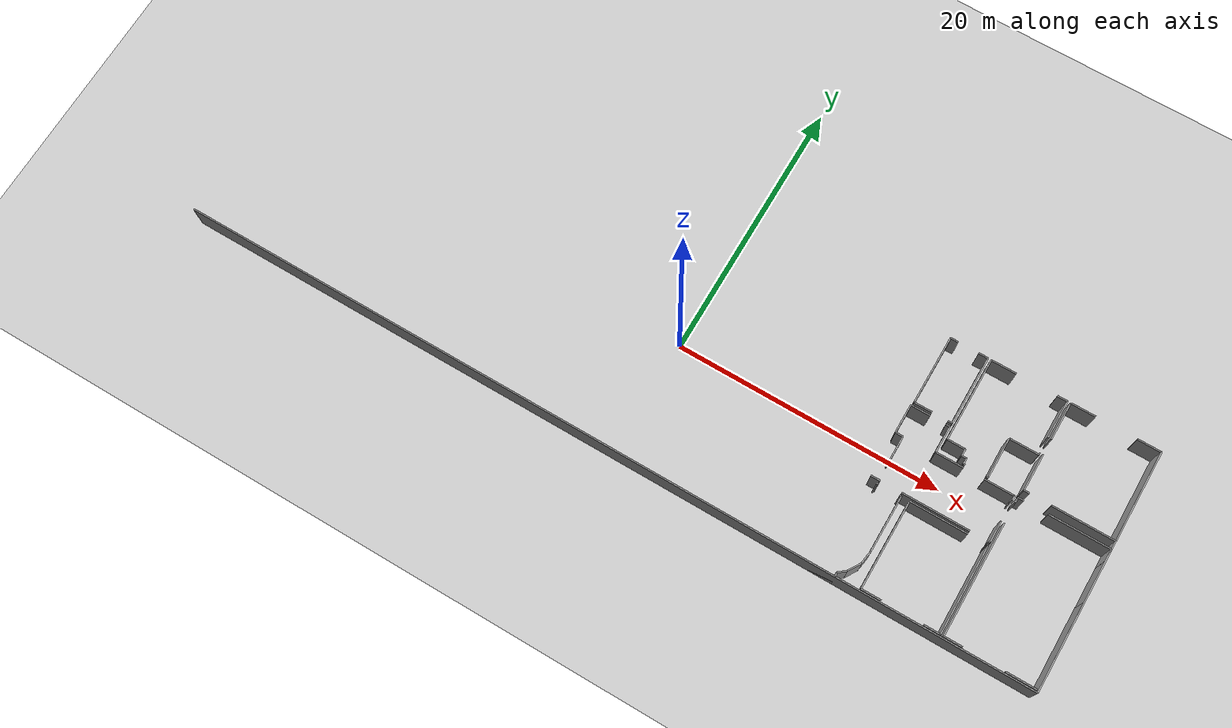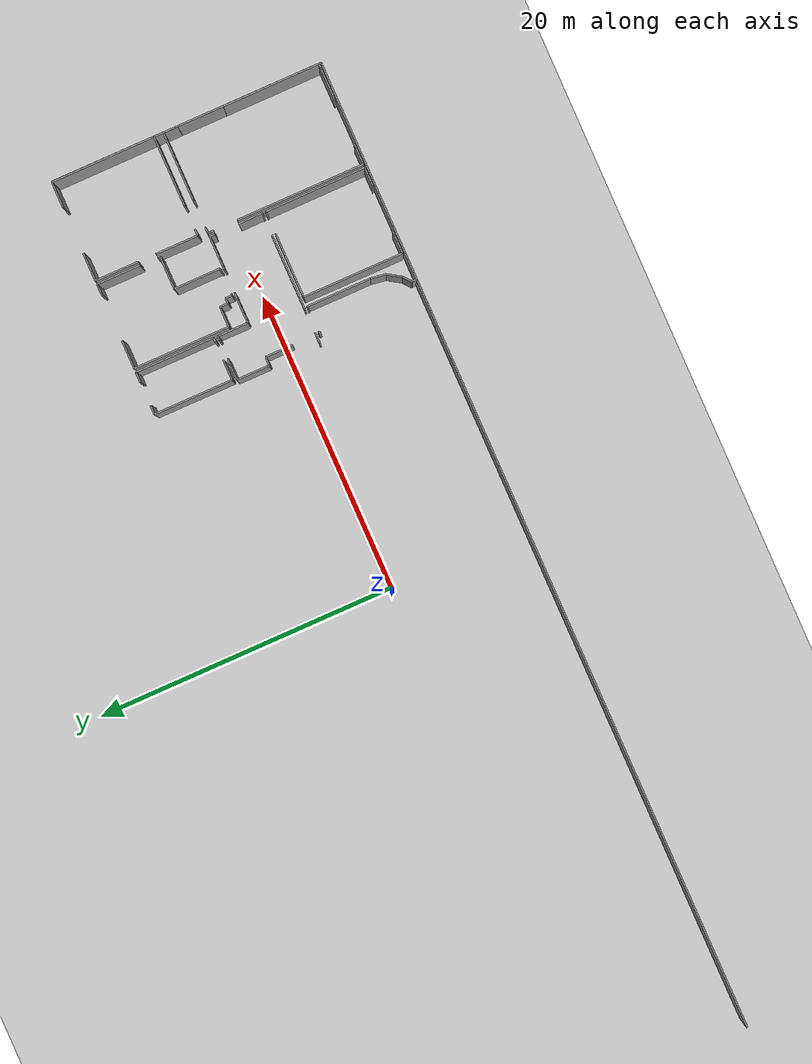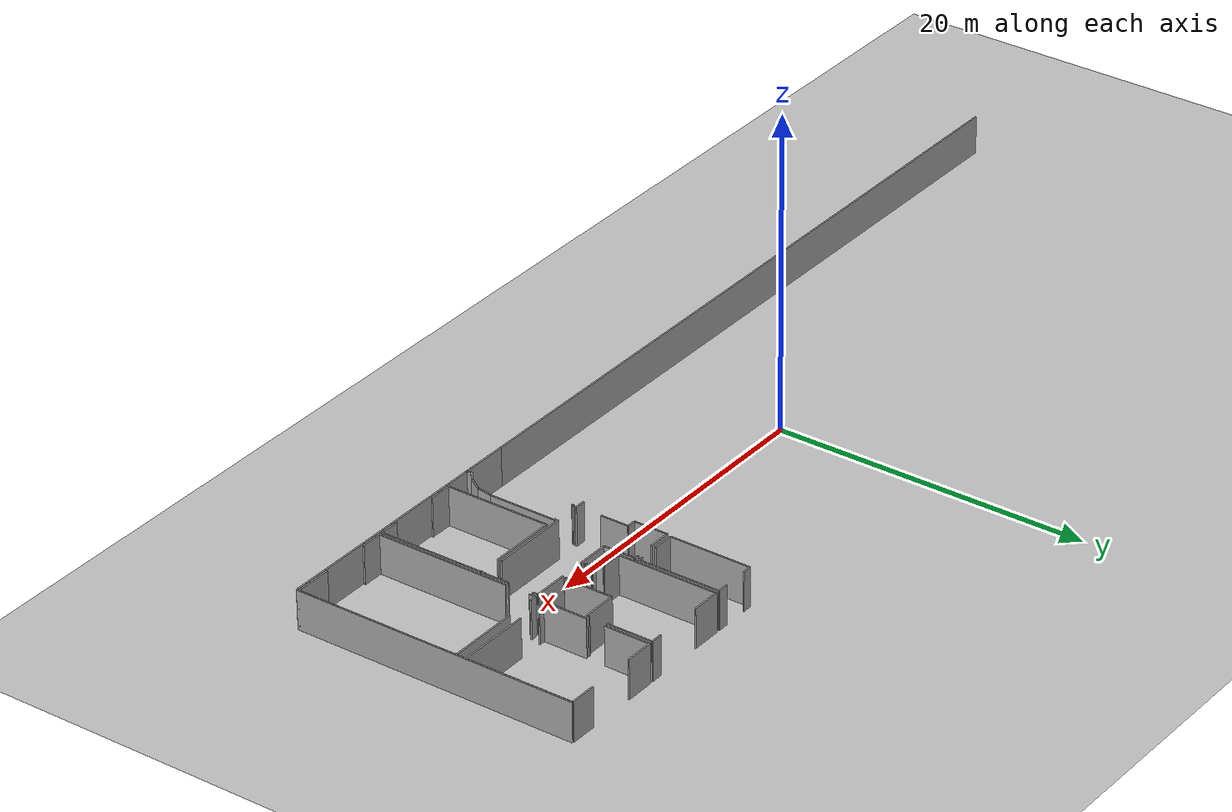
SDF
<sdf version="1.6">
 <world name="default">
  <model name="ground_plane">
   <static>1</static>
   <link name="link">
    <collision name="collision">
     <geometry><plane><normal>0 0 1</normal><size>100 100</size></plane></geometry>
     <surface><friction><ode><mu>100</mu><mu2>50</mu2></ode></friction></surface>
    </collision>
    <visual name="visual">
     <cast_shadows>0</cast_shadows>
     <geometry><plane><normal>0 0 1</normal><size>100 100</size></plane></geometry>
     <material>
      <script><uri>file://media/materials/scripts/gazebo.material</uri><name>Gazebo/Grey</name></script>
     </material>
    </visual>
   </link>
  </model>
  <model name="0510034840_A-40">
   <static>1</static>
   <link name="Wall_178">
    <collision name="Wall_178_Collision">
     <geometry><box><size>3.00222768036 0.1 2.5</size></box></geometry>
     <pose>1.50111384018 0 1.25 0 0 0</pose>
    </collision>
    <visual name="Wall_178_Visual">
     <pose>1.50111384018 0 1.25 0 0 0</pose>
     <geometry><box><size>3.00222768036 0.1 2.5</size></box></geometry>
     <material>
      <script><uri>file://media/materials/scripts/gazebo.material</uri><name>Gazebo/Grey</name></script>
      <ambient>1 1 1 1</ambient>
     </material>
    </visual>
    <pose>50.4421723374 -18.1569277051 0 0 0 3.14159265359</pose>
   </link>
   <link name="Wall_191">
    <collision name="Wall_191_Collision">
     <geometry><box><size>0.124013886509 0.1 2.5</size></box></geometry>
     <pose>0.0620069432544 0 1.25 0 0 0</pose>
    </collision>
    <visual name="Wall_191_Visual">
     <pose>0.0620069432544 0 1.25 0 0 0</pose>
     <geometry><box><size>0.124013886509 0.1 2.5</size></box></geometry>
     <material>
      <script><uri>file://media/materials/scripts/gazebo.material</uri><name>Gazebo/Grey</name></script>
      <ambient>1 1 1 1</ambient>
     </material>
    </visual>
    <pose>49.849774376 -11.4298407621 0 0 0 1.57079632679</pose>
   </link>
   <link name="Wall_192">
    <collision name="Wall_192_Collision">
     <geometry><box><size>0.0906304145009 0.1 2.5</size></box></geometry>
     <pose>0.0453152072504 0 1.25 0 0 0</pose>
    </collision>
    <visual name="Wall_192_Visual">
     <pose>0.0453152072504 0 1.25 0 0 0</pose>
     <geometry><box><size>0.0906304145009 0.1 2.5</size></box></geometry>
     <material>
      <script><uri>file://media/materials/scripts/gazebo.material</uri><name>Gazebo/Grey</name></script>
      <ambient>1 1 1 1</ambient>
     </material>
    </visual>
    <pose>49.849774376 -11.3058268756 0 0 0 0.0</pose>
   </link>
   <link name="Wall_193">
    <collision name="Wall_193_Collision">
     <geometry><box><size>0.130741354252 0.1 2.5</size></box></geometry>
     <pose>0.065370677126 0 1.25 0 0 0</pose>
    </collision>
    <visual name="Wall_193_Visual">
     <pose>0.065370677126 0 1.25 0 0 0</pose>
     <geometry><box><size>0.130741354252 0.1 2.5</size></box></geometry>
     <material>
      <script><uri>file://media/materials/scripts/gazebo.material</uri><name>Gazebo/Grey</name></script>
      <ambient>1 1 1 1</ambient>
     </material>
    </visual>
    <pose>51.5011773069 -11.3058268756 0 0 0 0.0</pose>
   </link>
   <link name="Wall_194">
    <collision name="Wall_194_Collision">
     <geometry><box><size>4.25531374752 0.1 2.5</size></box></geometry>
     <pose>2.12765687376 0 1.25 0 0 0</pose>
    </collision>
    <visual name="Wall_194_Visual">
     <pose>2.12765687376 0 1.25 0 0 0</pose>
     <geometry><box><size>4.25531374752 0.1 2.5</size></box></geometry>
     <material>
      <script><uri>file://media/materials/scripts/gazebo.material</uri><name>Gazebo/Grey</name></script>
      <ambient>1 1 1 1</ambient>
     </material>
    </visual>
    <pose>51.6319186611 -11.3058268756 0 0 0 -1.57079632679</pose>
   </link>
   <link name="Wall_195">
    <collision name="Wall_195_Collision">
     <geometry><box><size>0.999965145568 0.1 2.5</size></box></geometry>
     <pose>0.499982572784 0 1.25 0 0 0</pose>
    </collision>
    <visual name="Wall_195_Visual">
     <pose>0.499982572784 0 1.25 0 0 0</pose>
     <geometry><box><size>0.999965145568 0.1 2.5</size></box></geometry>
     <material>
      <script><uri>file://media/materials/scripts/gazebo.material</uri><name>Gazebo/Grey</name></script>
      <ambient>1 1 1 1</ambient>
     </material>
    </visual>
    <pose>51.6319186611 -15.5611406231 0 0 0 -1.72114873884</pose>
   </link>
   <link name="Wall_196">
    <collision name="Wall_196_Collision">
     <geometry><box><size>1.03566568426 0.1 2.5</size></box></geometry>
     <pose>0.517832842129 0 1.25 0 0 0</pose>
    </collision>
    <visual name="Wall_196_Visual">
     <pose>0.517832842129 0 1.25 0 0 0</pose>
     <geometry><box><size>1.03566568426 0.1 2.5</size></box></geometry>
     <material>
      <script><uri>file://media/materials/scripts/gazebo.material</uri><name>Gazebo/Grey</name></script>
      <ambient>1 1 1 1</ambient>
     </material>
    </visual>
    <pose>51.4821373038 -16.5498245146 0 0 0 -2.13833395158</pose>
   </link>
   <link name="Wall_197">
    <collision name="Wall_197_Collision">
     <geometry><box><size>0.68201579128 0.1 2.5</size></box></geometry>
     <pose>0.34100789564 0 1.25 0 0 0</pose>
    </collision>
    <visual name="Wall_197_Visual">
     <pose>0.34100789564 0 1.25 0 0 0</pose>
     <geometry><box><size>0.68201579128 0.1 2.5</size></box></geometry>
     <material>
      <script><uri>file://media/materials/scripts/gazebo.material</uri><name>Gazebo/Grey</name></script>
      <ambient>1 1 1 1</ambient>
     </material>
    </visual>
    <pose>50.9254076147 -17.4231259877 0 0 0 -2.45571909764</pose>
   </link>
   <link name="Wall_198">
    <collision name="Wall_198_Collision">
     <geometry><box><size>0.305117921789 0.1 2.5</size></box></geometry>
     <pose>0.152558960895 0 1.25 0 0 0</pose>
    </collision>
    <visual name="Wall_198_Visual">
     <pose>0.152558960895 0 1.25 0 0 0</pose>
     <geometry><box><size>0.305117921789 0.1 2.5</size></box></geometry>
     <material>
      <script><uri>file://media/materials/scripts/gazebo.material</uri><name>Gazebo/Grey</name></script>
      <ambient>1 1 1 1</ambient>
     </material>
    </visual>
    <pose>50.3976187303 -17.8550801901 0 0 0 -1.42425142662</pose>
   </link>
   <link name="Wall_199">
    <collision name="Wall_199_Collision">
     <geometry><box><size>0.1010389495 0.1 2.5</size></box></geometry>
     <pose>0.0505194747498 0 1.25 0 0 0</pose>
    </collision>
    <visual name="Wall_199_Visual">
     <pose>0.0505194747498 0 1.25 0 0 0</pose>
     <geometry><box><size>0.1010389495 0.1 2.5</size></box></geometry>
     <material>
      <script><uri>file://media/materials/scripts/gazebo.material</uri><name>Gazebo/Grey</name></script>
      <ambient>1 1 1 1</ambient>
     </material>
    </visual>
    <pose>58.0222514169 -11.0989255092 0 0 0 3.14159265359</pose>
   </link>
   <link name="Wall_200">
    <collision name="Wall_200_Collision">
     <geometry><box><size>5.01589840254 0.1 2.5</size></box></geometry>
     <pose>2.50794920127 0 1.25 0 0 0</pose>
    </collision>
    <visual name="Wall_200_Visual">
     <pose>2.50794920127 0 1.25 0 0 0</pose>
     <geometry><box><size>5.01589840254 0.1 2.5</size></box></geometry>
     <material>
      <script><uri>file://media/materials/scripts/gazebo.material</uri><name>Gazebo/Grey</name></script>
      <ambient>1 1 1 1</ambient>
     </material>
    </visual>
    <pose>56.5469050475 -11.0989255092 0 0 0 3.14159265359</pose>
   </link>
   <link name="Wall_201">
    <collision name="Wall_201_Collision">
     <geometry><box><size>0.701052912168 0.1 2.5</size></box></geometry>
     <pose>0.350526456084 0 1.25 0 0 0</pose>
    </collision>
    <visual name="Wall_201_Visual">
     <pose>0.350526456084 0 1.25 0 0 0</pose>
     <geometry><box><size>0.701052912168 0.1 2.5</size></box></geometry>
     <material>
      <script><uri>file://media/materials/scripts/gazebo.material</uri><name>Gazebo/Grey</name></script>
      <ambient>1 1 1 1</ambient>
     </material>
    </visual>
    <pose>49.9452282579 -11.0989255092 0 0 0 3.14159265359</pose>
   </link>
   <link name="Wall_204">
    <collision name="Wall_204_Collision">
     <geometry><box><size>1.82377842514 0.1 2.5</size></box></geometry>
     <pose>0.911889212569 0 1.25 0 0 0</pose>
    </collision>
    <visual name="Wall_204_Visual">
     <pose>0.911889212569 0 1.25 0 0 0</pose>
     <geometry><box><size>1.82377842514 0.1 2.5</size></box></geometry>
     <material>
      <script><uri>file://media/materials/scripts/gazebo.material</uri><name>Gazebo/Grey</name></script>
      <ambient>1 1 1 1</ambient>
     </material>
    </visual>
    <pose>49.8181679709 -9.52114392338 0 0 0 1.57079632679</pose>
   </link>
   <link name="Wall_205">
    <collision name="Wall_205_Collision">
     <geometry><box><size>0.568026757551 0.1 2.5</size></box></geometry>
     <pose>0.284013378775 0 1.25 0 0 0</pose>
    </collision>
    <visual name="Wall_205_Visual">
     <pose>0.284013378775 0 1.25 0 0 0</pose>
     <geometry><box><size>0.568026757551 0.1 2.5</size></box></geometry>
     <material>
      <script><uri>file://media/materials/scripts/gazebo.material</uri><name>Gazebo/Grey</name></script>
      <ambient>1 1 1 1</ambient>
     </material>
    </visual>
    <pose>49.8181679709 -7.69736549825 0 0 0 3.14159265359</pose>
   </link>
   <link name="Wall_206">
    <collision name="Wall_206_Collision">
     <geometry><box><size>2.18350754936 0.1 2.5</size></box></geometry>
     <pose>1.09175377468 0 1.25 0 0 0</pose>
    </collision>
    <visual name="Wall_206_Visual">
     <pose>1.09175377468 0 1.25 0 0 0</pose>
     <geometry><box><size>2.18350754936 0.1 2.5</size></box></geometry>
     <material>
      <script><uri>file://media/materials/scripts/gazebo.material</uri><name>Gazebo/Grey</name></script>
      <ambient>1 1 1 1</ambient>
     </material>
    </visual>
    <pose>49.2501412134 -7.69736549825 0 0 0 1.57079632679</pose>
   </link>
   <link name="Wall_207">
    <collision name="Wall_207_Collision">
     <geometry><box><size>1.43256982921 0.1 2.5</size></box></geometry>
     <pose>0.716284914606 0 1.25 0 0 0</pose>
    </collision>
    <visual name="Wall_207_Visual">
     <pose>0.716284914606 0 1.25 0 0 0</pose>
     <geometry><box><size>1.43256982921 0.1 2.5</size></box></geometry>
     <material>
      <script><uri>file://media/materials/scripts/gazebo.material</uri><name>Gazebo/Grey</name></script>
      <ambient>1 1 1 1</ambient>
     </material>
    </visual>
    <pose>49.2501412134 -5.51385794888 0 0 0 0.0</pose>
   </link>
   <link name="Wall_208">
    <collision name="Wall_208_Collision">
     <geometry><box><size>0.297531780938 0.1 2.5</size></box></geometry>
     <pose>0.148765890469 0 1.25 0 0 0</pose>
    </collision>
    <visual name="Wall_208_Visual">
     <pose>0.148765890469 0 1.25 0 0 0</pose>
     <geometry><box><size>0.297531780938 0.1 2.5</size></box></geometry>
     <material>
      <script><uri>file://media/materials/scripts/gazebo.material</uri><name>Gazebo/Grey</name></script>
      <ambient>1 1 1 1</ambient>
     </material>
    </visual>
    <pose>51.885277635 -5.51385794888 0 0 0 0.0</pose>
   </link>
   <link name="Wall_209">
    <collision name="Wall_209_Collision">
     <geometry><box><size>2.03296459194 0.1 2.5</size></box></geometry>
     <pose>1.01648229597 0 1.25 0 0 0</pose>
    </collision>
    <visual name="Wall_209_Visual">
     <pose>1.01648229597 0 1.25 0 0 0</pose>
     <geometry><box><size>2.03296459194 0.1 2.5</size></box></geometry>
     <material>
      <script><uri>file://media/materials/scripts/gazebo.material</uri><name>Gazebo/Grey</name></script>
      <ambient>1 1 1 1</ambient>
     </material>
    </visual>
    <pose>52.1828094159 -5.51385794888 0 0 0 -1.57079632679</pose>
   </link>
   <link name="Wall_210">
    <collision name="Wall_210_Collision">
     <geometry><box><size>2.05390859529 0.1 2.5</size></box></geometry>
     <pose>1.02695429765 0 1.25 0 0 0</pose>
    </collision>
    <visual name="Wall_210_Visual">
     <pose>1.02695429765 0 1.25 0 0 0</pose>
     <geometry><box><size>2.05390859529 0.1 2.5</size></box></geometry>
     <material>
      <script><uri>file://media/materials/scripts/gazebo.material</uri><name>Gazebo/Grey</name></script>
      <ambient>1 1 1 1</ambient>
     </material>
    </visual>
    <pose>52.1828094159 -7.54682254082 0 0 0 0.0</pose>
   </link>
   <link name="Wall_211">
    <collision name="Wall_211_Collision">
     <geometry><box><size>2.20330915253 0.1 2.5</size></box></geometry>
     <pose>1.10165457626 0 1.25 0 0 0</pose>
    </collision>
    <visual name="Wall_211_Visual">
     <pose>1.10165457626 0 1.25 0 0 0</pose>
     <geometry><box><size>2.20330915253 0.1 2.5</size></box></geometry>
     <material>
      <script><uri>file://media/materials/scripts/gazebo.material</uri><name>Gazebo/Grey</name></script>
      <ambient>1 1 1 1</ambient>
     </material>
    </visual>
    <pose>55.795840394 -7.54682254082 0 0 0 0.0</pose>
   </link>
   <link name="Wall_212">
    <collision name="Wall_212_Collision">
     <geometry><box><size>0.342212321421 0.1 2.5</size></box></geometry>
     <pose>0.17110616071 0 1.25 0 0 0</pose>
    </collision>
    <visual name="Wall_212_Visual">
     <pose>0.17110616071 0 1.25 0 0 0</pose>
     <geometry><box><size>0.342212321421 0.1 2.5</size></box></geometry>
     <material>
      <script><uri>file://media/materials/scripts/gazebo.material</uri><name>Gazebo/Grey</name></script>
      <ambient>1 1 1 1</ambient>
     </material>
    </visual>
    <pose>57.9991495465 -7.54682254082 0 0 0 -1.57079632679</pose>
   </link>
   <link name="Wall_213">
    <collision name="Wall_213_Collision">
     <geometry><box><size>1.60764998561 0.1 2.5</size></box></geometry>
     <pose>0.803824992804 0 1.25 0 0 0</pose>
    </collision>
    <visual name="Wall_213_Visual">
     <pose>0.803824992804 0 1.25 0 0 0</pose>
     <geometry><box><size>1.60764998561 0.1 2.5</size></box></geometry>
     <material>
      <script><uri>file://media/materials/scripts/gazebo.material</uri><name>Gazebo/Grey</name></script>
      <ambient>1 1 1 1</ambient>
     </material>
    </visual>
    <pose>57.9991495465 -9.49144151863 0 0 0 -1.55642586947</pose>
   </link>
   <link name="Wall_214">
    <collision name="Wall_214_Collision">
     <geometry><box><size>0.319364317765 0.1 2.5</size></box></geometry>
     <pose>0.159682158882 0 1.25 0 0 0</pose>
    </collision>
    <visual name="Wall_214_Visual">
     <pose>0.159682158882 0 1.25 0 0 0</pose>
     <geometry><box><size>0.319364317765 0.1 2.5</size></box></geometry>
     <material>
      <script><uri>file://media/materials/scripts/gazebo.material</uri><name>Gazebo/Grey</name></script>
      <ambient>1 1 1 1</ambient>
     </material>
    </visual>
    <pose>52.197914485 -5.24374377233 0 0 0 3.14159265359</pose>
   </link>
   <link name="Wall_215">
    <collision name="Wall_215_Collision">
     <geometry><box><size>1.35196714965 0.1 2.5</size></box></geometry>
     <pose>0.675983574824 0 1.25 0 0 0</pose>
    </collision>
    <visual name="Wall_215_Visual">
     <pose>0.675983574824 0 1.25 0 0 0</pose>
     <geometry><box><size>1.35196714965 0.1 2.5</size></box></geometry>
     <material>
      <script><uri>file://media/materials/scripts/gazebo.material</uri><name>Gazebo/Grey</name></script>
      <ambient>1 1 1 1</ambient>
     </material>
    </visual>
    <pose>50.7046705127 -5.24374377233 0 0 0 3.14159265359</pose>
   </link>
   <link name="Wall_216">
    <collision name="Wall_216_Collision">
     <geometry><box><size>5.23333523733 0.1 2.5</size></box></geometry>
     <pose>2.61666761867 0 1.25 0 0 0</pose>
    </collision>
    <visual name="Wall_216_Visual">
     <pose>2.61666761867 0 1.25 0 0 0</pose>
     <geometry><box><size>5.23333523733 0.1 2.5</size></box></geometry>
     <material>
      <script><uri>file://media/materials/scripts/gazebo.material</uri><name>Gazebo/Grey</name></script>
      <ambient>1 1 1 1</ambient>
     </material>
    </visual>
    <pose>49.3527033631 -5.24374377233 0 0 0 1.57079632679</pose>
   </link>
   <link name="Wall_217">
    <collision name="Wall_217_Collision">
     <geometry><box><size>0.592778761511 0.1 2.5</size></box></geometry>
     <pose>0.296389380756 0 1.25 0 0 0</pose>
    </collision>
    <visual name="Wall_217_Visual">
     <pose>0.296389380756 0 1.25 0 0 0</pose>
     <geometry><box><size>0.592778761511 0.1 2.5</size></box></geometry>
     <material>
      <script><uri>file://media/materials/scripts/gazebo.material</uri><name>Gazebo/Grey</name></script>
      <ambient>1 1 1 1</ambient>
     </material>
    </visual>
    <pose>49.3527033631 -0.0104085349987 0 0 0 0.0</pose>
   </link>
   <link name="Wall_218">
    <collision name="Wall_218_Collision">
     <geometry><box><size>0.713365447472 0.1 2.5</size></box></geometry>
     <pose>0.356682723736 0 1.25 0 0 0</pose>
    </collision>
    <visual name="Wall_218_Visual">
     <pose>0.356682723736 0 1.25 0 0 0</pose>
     <geometry><box><size>0.713365447472 0.1 2.5</size></box></geometry>
     <material>
      <script><uri>file://media/materials/scripts/gazebo.material</uri><name>Gazebo/Grey</name></script>
      <ambient>1 1 1 1</ambient>
     </material>
    </visual>
    <pose>51.4765522362 -0.0104085349987 0 0 0 0.0</pose>
   </link>
   <link name="Wall_219">
    <collision name="Wall_219_Collision">
     <geometry><box><size>5.23334134709 0.1 2.5</size></box></geometry>
     <pose>2.61667067354 0 1.25 0 0 0</pose>
    </collision>
    <visual name="Wall_219_Visual">
     <pose>2.61667067354 0 1.25 0 0 0</pose>
     <geometry><box><size>5.23334134709 0.1 2.5</size></box></geometry>
     <material>
      <script><uri>file://media/materials/scripts/gazebo.material</uri><name>Gazebo/Grey</name></script>
      <ambient>1 1 1 1</ambient>
     </material>
    </visual>
    <pose>52.1899176837 -0.0104085349987 0 0 0 -1.56926827734</pose>
   </link>
   <link name="Wall_220">
    <collision name="Wall_220_Collision">
     <geometry><box><size>0.115890151876 0.1 2.5</size></box></geometry>
     <pose>0.0579450759379 0 1.25 0 0 0</pose>
    </collision>
    <visual name="Wall_220_Visual">
     <pose>0.0579450759379 0 1.25 0 0 0</pose>
     <geometry><box><size>0.115890151876 0.1 2.5</size></box></geometry>
     <material>
      <script><uri>file://media/materials/scripts/gazebo.material</uri><name>Gazebo/Grey</name></script>
      <ambient>1 1 1 1</ambient>
     </material>
    </visual>
    <pose>55.9355940164 -7.33573237372 0 0 0 3.14159265359</pose>
   </link>
   <link name="Wall_221">
    <collision name="Wall_221_Collision">
     <geometry><box><size>0.125156286692 0.1 2.5</size></box></geometry>
     <pose>0.0625781433458 0 1.25 0 0 0</pose>
    </collision>
    <visual name="Wall_221_Visual">
     <pose>0.0625781433458 0 1.25 0 0 0</pose>
     <geometry><box><size>0.125156286692 0.1 2.5</size></box></geometry>
     <material>
      <script><uri>file://media/materials/scripts/gazebo.material</uri><name>Gazebo/Grey</name></script>
      <ambient>1 1 1 1</ambient>
     </material>
    </visual>
    <pose>54.2518230803 -7.33573237372 0 0 0 3.14159265359</pose>
   </link>
   <link name="Wall_222">
    <collision name="Wall_222_Collision">
     <geometry><box><size>0.431573402385 0.1 2.5</size></box></geometry>
     <pose>0.215786701193 0 1.25 0 0 0</pose>
    </collision>
    <visual name="Wall_222_Visual">
     <pose>0.215786701193 0 1.25 0 0 0</pose>
     <geometry><box><size>0.431573402385 0.1 2.5</size></box></geometry>
     <material>
      <script><uri>file://media/materials/scripts/gazebo.material</uri><name>Gazebo/Grey</name></script>
      <ambient>1 1 1 1</ambient>
     </material>
    </visual>
    <pose>54.1266667936 -7.33573237372 0 0 0 1.57079632679</pose>
   </link>
   <link name="Wall_223">
    <collision name="Wall_223_Collision">
     <geometry><box><size>0.350589922761 0.1 2.5</size></box></geometry>
     <pose>0.175294961381 0 1.25 0 0 0</pose>
    </collision>
    <visual name="Wall_223_Visual">
     <pose>0.175294961381 0 1.25 0 0 0</pose>
     <geometry><box><size>0.350589922761 0.1 2.5</size></box></geometry>
     <material>
      <script><uri>file://media/materials/scripts/gazebo.material</uri><name>Gazebo/Grey</name></script>
      <ambient>1 1 1 1</ambient>
     </material>
    </visual>
    <pose>54.1266667936 -6.90415897133 0 0 0 3.14159265359</pose>
   </link>
   <link name="Wall_224">
    <collision name="Wall_224_Collision">
     <geometry><box><size>0.525757950788 0.1 2.5</size></box></geometry>
     <pose>0.262878975394 0 1.25 0 0 0</pose>
    </collision>
    <visual name="Wall_224_Visual">
     <pose>0.262878975394 0 1.25 0 0 0</pose>
     <geometry><box><size>0.525757950788 0.1 2.5</size></box></geometry>
     <material>
      <script><uri>file://media/materials/scripts/gazebo.material</uri><name>Gazebo/Grey</name></script>
      <ambient>1 1 1 1</ambient>
     </material>
    </visual>
    <pose>53.7760768708 -6.90415897133 0 0 0 1.57079632679</pose>
   </link>
   <link name="Wall_225">
    <collision name="Wall_225_Collision">
     <geometry><box><size>1.34371648166 0.1 2.5</size></box></geometry>
     <pose>0.671858240831 0 1.25 0 0 0</pose>
    </collision>
    <visual name="Wall_225_Visual">
     <pose>0.671858240831 0 1.25 0 0 0</pose>
     <geometry><box><size>1.34371648166 0.1 2.5</size></box></geometry>
     <material>
      <script><uri>file://media/materials/scripts/gazebo.material</uri><name>Gazebo/Grey</name></script>
      <ambient>1 1 1 1</ambient>
     </material>
    </visual>
    <pose>53.7760768708 -6.37840102054 0 0 0 3.14159265359</pose>
   </link>
   <link name="Wall_226">
    <collision name="Wall_226_Collision">
     <geometry><box><size>6.3629151514 0.1 2.5</size></box></geometry>
     <pose>3.1814575757 0 1.25 0 0 0</pose>
    </collision>
    <visual name="Wall_226_Visual">
     <pose>3.1814575757 0 1.25 0 0 0</pose>
     <geometry><box><size>6.3629151514 0.1 2.5</size></box></geometry>
     <material>
      <script><uri>file://media/materials/scripts/gazebo.material</uri><name>Gazebo/Grey</name></script>
      <ambient>1 1 1 1</ambient>
     </material>
    </visual>
    <pose>52.4323603892 -6.37840102054 0 0 0 1.57079632679</pose>
   </link>
   <link name="Wall_227">
    <collision name="Wall_227_Collision">
     <geometry><box><size>1.87912136733 0.1 2.5</size></box></geometry>
     <pose>0.939560683663 0 1.25 0 0 0</pose>
    </collision>
    <visual name="Wall_227_Visual">
     <pose>0.939560683663 0 1.25 0 0 0</pose>
     <geometry><box><size>1.87912136733 0.1 2.5</size></box></geometry>
     <material>
      <script><uri>file://media/materials/scripts/gazebo.material</uri><name>Gazebo/Grey</name></script>
      <ambient>1 1 1 1</ambient>
     </material>
    </visual>
    <pose>52.4323603892 -0.0154858691444 0 0 0 0.0</pose>
   </link>
   <link name="Wall_228">
    <collision name="Wall_228_Collision">
     <geometry><box><size>0.749160653199 0.1 2.5</size></box></geometry>
     <pose>0.3745803266 0 1.25 0 0 0</pose>
    </collision>
    <visual name="Wall_228_Visual">
     <pose>0.3745803266 0 1.25 0 0 0</pose>
     <geometry><box><size>0.749160653199 0.1 2.5</size></box></geometry>
     <material>
      <script><uri>file://media/materials/scripts/gazebo.material</uri><name>Gazebo/Grey</name></script>
      <ambient>1 1 1 1</ambient>
     </material>
    </visual>
    <pose>57.3703217126 -0.0154858691444 0 0 0 0.0</pose>
   </link>
   <link name="Wall_229">
    <collision name="Wall_229_Collision">
     <geometry><box><size>2.89928473055 0.1 2.5</size></box></geometry>
     <pose>1.44964236528 0 1.25 0 0 0</pose>
    </collision>
    <visual name="Wall_229_Visual">
     <pose>1.44964236528 0 1.25 0 0 0</pose>
     <geometry><box><size>2.89928473055 0.1 2.5</size></box></geometry>
     <material>
      <script><uri>file://media/materials/scripts/gazebo.material</uri><name>Gazebo/Grey</name></script>
      <ambient>1 1 1 1</ambient>
     </material>
    </visual>
    <pose>58.1194823658 -0.0154858691444 0 0 0 -1.57079632679</pose>
   </link>
   <link name="Wall_230">
    <collision name="Wall_230_Collision">
     <geometry><box><size>0.172756294308 0.1 2.5</size></box></geometry>
     <pose>0.0863781471538 0 1.25 0 0 0</pose>
    </collision>
    <visual name="Wall_230_Visual">
     <pose>0.0863781471538 0 1.25 0 0 0</pose>
     <geometry><box><size>0.172756294308 0.1 2.5</size></box></geometry>
     <material>
      <script><uri>file://media/materials/scripts/gazebo.material</uri><name>Gazebo/Grey</name></script>
      <ambient>1 1 1 1</ambient>
     </material>
    </visual>
    <pose>58.1194823658 -4.08204971979 0 0 0 -1.57079632679</pose>
   </link>
   <link name="Wall_231">
    <collision name="Wall_231_Collision">
     <geometry><box><size>2.19340835095 0.1 2.5</size></box></geometry>
     <pose>1.09670417547 0 1.25 0 0 0</pose>
    </collision>
    <visual name="Wall_231_Visual">
     <pose>1.09670417547 0 1.25 0 0 0</pose>
     <geometry><box><size>2.19340835095 0.1 2.5</size></box></geometry>
     <material>
      <script><uri>file://media/materials/scripts/gazebo.material</uri><name>Gazebo/Grey</name></script>
      <ambient>1 1 1 1</ambient>
     </material>
    </visual>
    <pose>58.1194823658 -4.2548060141 0 0 0 3.14159265359</pose>
   </link>
   <link name="Wall_232">
    <collision name="Wall_232_Collision">
     <geometry><box><size>3.08094106789 0.1 2.5</size></box></geometry>
     <pose>1.54047053394 0 1.25 0 0 0</pose>
    </collision>
    <visual name="Wall_232_Visual">
     <pose>1.54047053394 0 1.25 0 0 0</pose>
     <geometry><box><size>3.08094106789 0.1 2.5</size></box></geometry>
     <material>
      <script><uri>file://media/materials/scripts/gazebo.material</uri><name>Gazebo/Grey</name></script>
      <ambient>1 1 1 1</ambient>
     </material>
    </visual>
    <pose>55.9260740148 -4.2548060141 0 0 0 -1.56770635641</pose>
   </link>
   <link name="Wall_233">
    <collision name="Wall_233_Collision">
     <geometry><box><size>4.65667701173 0.1 2.5</size></box></geometry>
     <pose>2.32833850587 0 1.25 0 0 0</pose>
    </collision>
    <visual name="Wall_233_Visual">
     <pose>2.32833850587 0 1.25 0 0 0</pose>
     <geometry><box><size>4.65667701173 0.1 2.5</size></box></geometry>
     <material>
      <script><uri>file://media/materials/scripts/gazebo.material</uri><name>Gazebo/Grey</name></script>
      <ambient>1 1 1 1</ambient>
     </material>
    </visual>
    <pose>65.0119634686 -6.89857390377 0 0 0 3.14159265359</pose>
   </link>
   <link name="Wall_234">
    <collision name="Wall_234_Collision">
     <geometry><box><size>0.418880067021 0.1 2.5</size></box></geometry>
     <pose>0.20944003351 0 1.25 0 0 0</pose>
    </collision>
    <visual name="Wall_234_Visual">
     <pose>0.20944003351 0 1.25 0 0 0</pose>
     <geometry><box><size>0.418880067021 0.1 2.5</size></box></geometry>
     <material>
      <script><uri>file://media/materials/scripts/gazebo.material</uri><name>Gazebo/Grey</name></script>
      <ambient>1 1 1 1</ambient>
     </material>
    </visual>
    <pose>58.7701427366 -6.89857390377 0 0 0 3.14159265359</pose>
   </link>
   <link name="Wall_235">
    <collision name="Wall_235_Collision">
     <geometry><box><size>2.82680578562 0.1 2.5</size></box></geometry>
     <pose>1.41340289281 0 1.25 0 0 0</pose>
    </collision>
    <visual name="Wall_235_Visual">
     <pose>1.41340289281 0 1.25 0 0 0</pose>
     <geometry><box><size>2.82680578562 0.1 2.5</size></box></geometry>
     <material>
      <script><uri>file://media/materials/scripts/gazebo.material</uri><name>Gazebo/Grey</name></script>
      <ambient>1 1 1 1</ambient>
     </material>
    </visual>
    <pose>58.3512626695 -6.89857390377 0 0 0 1.57079632679</pose>
   </link>
   <link name="Wall_236">
    <collision name="Wall_236_Collision">
     <geometry><box><size>2.89598446336 0.1 2.5</size></box></geometry>
     <pose>1.44799223168 0 1.25 0 0 0</pose>
    </collision>
    <visual name="Wall_236_Visual">
     <pose>1.44799223168 0 1.25 0 0 0</pose>
     <geometry><box><size>2.89598446336 0.1 2.5</size></box></geometry>
     <material>
      <script><uri>file://media/materials/scripts/gazebo.material</uri><name>Gazebo/Grey</name></script>
      <ambient>1 1 1 1</ambient>
     </material>
    </visual>
    <pose>58.3512626695 -2.90639299836 0 0 0 1.57079632679</pose>
   </link>
   <link name="Wall_237">
    <collision name="Wall_237_Collision">
     <geometry><box><size>1.85132296288 0.1 2.5</size></box></geometry>
     <pose>0.925661481439 0 1.25 0 0 0</pose>
    </collision>
    <visual name="Wall_237_Visual">
     <pose>0.925661481439 0 1.25 0 0 0</pose>
     <geometry><box><size>1.85132296288 0.1 2.5</size></box></geometry>
     <material>
      <script><uri>file://media/materials/scripts/gazebo.material</uri><name>Gazebo/Grey</name></script>
      <ambient>1 1 1 1</ambient>
     </material>
    </visual>
    <pose>58.3512626695 -0.0104085349987 0 0 0 0.0</pose>
   </link>
   <link name="Wall_238">
    <collision name="Wall_238_Collision">
     <geometry><box><size>1.71931227509 0.1 2.5</size></box></geometry>
     <pose>0.859656137545 0 1.25 0 0 0</pose>
    </collision>
    <visual name="Wall_238_Visual">
     <pose>0.859656137545 0 1.25 0 0 0</pose>
     <geometry><box><size>1.71931227509 0.1 2.5</size></box></geometry>
     <material>
      <script><uri>file://media/materials/scripts/gazebo.material</uri><name>Gazebo/Grey</name></script>
      <ambient>1 1 1 1</ambient>
     </material>
    </visual>
    <pose>63.2738650572 -0.0104085349987 0 0 0 0.0</pose>
   </link>
   <link name="Wall_239">
    <collision name="Wall_239_Collision">
     <geometry><box><size>6.8881909865 0.1 2.5</size></box></geometry>
     <pose>3.44409549325 0 1.25 0 0 0</pose>
    </collision>
    <visual name="Wall_239_Visual">
     <pose>3.44409549325 0 1.25 0 0 0</pose>
     <geometry><box><size>6.8881909865 0.1 2.5</size></box></geometry>
     <material>
      <script><uri>file://media/materials/scripts/gazebo.material</uri><name>Gazebo/Grey</name></script>
      <ambient>1 1 1 1</ambient>
     </material>
    </visual>
    <pose>64.9931773322 -0.0104085349987 0 0 0 -1.56806902732</pose>
   </link>
   <link name="Wall_240">
    <collision name="Wall_240_Collision">
     <geometry><box><size>2.34496677519 0.1 2.5</size></box></geometry>
     <pose>1.1724833876 0 1.25 0 0 0</pose>
    </collision>
    <visual name="Wall_240_Visual">
     <pose>1.1724833876 0 1.25 0 0 0</pose>
     <geometry><box><size>2.34496677519 0.1 2.5</size></box></geometry>
     <material>
      <script><uri>file://media/materials/scripts/gazebo.material</uri><name>Gazebo/Grey</name></script>
      <ambient>1 1 1 1</ambient>
     </material>
    </visual>
    <pose>65.0119634686 -18.0134930155 0 0 0 3.14159265359</pose>
   </link>
   <link name="Wall_241">
    <collision name="Wall_241_Collision">
     <geometry><box><size>1.36313728477 0.1 2.5</size></box></geometry>
     <pose>0.681568642384 0 1.25 0 0 0</pose>
    </collision>
    <visual name="Wall_241_Visual">
     <pose>0.681568642384 0 1.25 0 0 0</pose>
     <geometry><box><size>1.36313728477 0.1 2.5</size></box></geometry>
     <material>
      <script><uri>file://media/materials/scripts/gazebo.material</uri><name>Gazebo/Grey</name></script>
      <ambient>1 1 1 1</ambient>
     </material>
    </visual>
    <pose>59.5999060693 -18.0134930155 0 0 0 3.14159265359</pose>
   </link>
   <link name="Wall_242">
    <collision name="Wall_242_Collision">
     <geometry><box><size>8.5096120282 0.1 2.5</size></box></geometry>
     <pose>4.2548060141 0 1.25 0 0 0</pose>
    </collision>
    <visual name="Wall_242_Visual">
     <pose>4.2548060141 0 1.25 0 0 0</pose>
     <geometry><box><size>8.5096120282 0.1 2.5</size></box></geometry>
     <material>
      <script><uri>file://media/materials/scripts/gazebo.material</uri><name>Gazebo/Grey</name></script>
      <ambient>1 1 1 1</ambient>
     </material>
    </visual>
    <pose>58.2367687845 -18.0134930155 0 0 0 1.57079632679</pose>
   </link>
   <link name="Wall_243">
    <collision name="Wall_243_Collision">
     <geometry><box><size>0.397428330255 0.1 2.5</size></box></geometry>
     <pose>0.198714165128 0 1.25 0 0 0</pose>
    </collision>
    <visual name="Wall_243_Visual">
     <pose>0.198714165128 0 1.25 0 0 0</pose>
     <geometry><box><size>0.397428330255 0.1 2.5</size></box></geometry>
     <material>
      <script><uri>file://media/materials/scripts/gazebo.material</uri><name>Gazebo/Grey</name></script>
      <ambient>1 1 1 1</ambient>
     </material>
    </visual>
    <pose>58.2367687845 -7.92508393468 0 0 0 1.57079632679</pose>
   </link>
   <link name="Wall_244">
    <collision name="Wall_244_Collision">
     <geometry><box><size>0.428527001898 0.1 2.5</size></box></geometry>
     <pose>0.214263500949 0 1.25 0 0 0</pose>
    </collision>
    <visual name="Wall_244_Visual">
     <pose>0.214263500949 0 1.25 0 0 0</pose>
     <geometry><box><size>0.428527001898 0.1 2.5</size></box></geometry>
     <material>
      <script><uri>file://media/materials/scripts/gazebo.material</uri><name>Gazebo/Grey</name></script>
      <ambient>1 1 1 1</ambient>
     </material>
    </visual>
    <pose>58.2367687845 -7.52765560442 0 0 0 0.0</pose>
   </link>
   <link name="Wall_245">
    <collision name="Wall_245_Collision">
     <geometry><box><size>4.55690739577 0.1 2.5</size></box></geometry>
     <pose>2.27845369789 0 1.25 0 0 0</pose>
    </collision>
    <visual name="Wall_245_Visual">
     <pose>2.27845369789 0 1.25 0 0 0</pose>
     <geometry><box><size>4.55690739577 0.1 2.5</size></box></geometry>
     <material>
      <script><uri>file://media/materials/scripts/gazebo.material</uri><name>Gazebo/Grey</name></script>
      <ambient>1 1 1 1</ambient>
     </material>
    </visual>
    <pose>60.4456630046 -7.52765560442 0 0 0 0.0</pose>
   </link>
   <link name="Wall_246">
    <collision name="Wall_246_Collision">
     <geometry><box><size>0.969390021769 0.1 2.5</size></box></geometry>
     <pose>0.484695010885 0 1.25 0 0 0</pose>
    </collision>
    <visual name="Wall_246_Visual">
     <pose>0.484695010885 0 1.25 0 0 0</pose>
     <geometry><box><size>0.969390021769 0.1 2.5</size></box></geometry>
     <material>
      <script><uri>file://media/materials/scripts/gazebo.material</uri><name>Gazebo/Grey</name></script>
      <ambient>1 1 1 1</ambient>
     </material>
    </visual>
    <pose>65.0025704004 -7.52765560442 0 0 0 -1.57079632679</pose>
   </link>
   <link name="Wall_247">
    <collision name="Wall_247_Collision">
     <geometry><box><size>6.45469480063 0.1 2.5</size></box></geometry>
     <pose>3.22734740031 0 1.25 0 0 0</pose>
    </collision>
    <visual name="Wall_247_Visual">
     <pose>3.22734740031 0 1.25 0 0 0</pose>
     <geometry><box><size>6.45469480063 0.1 2.5</size></box></geometry>
     <material>
      <script><uri>file://media/materials/scripts/gazebo.material</uri><name>Gazebo/Grey</name></script>
      <ambient>1 1 1 1</ambient>
     </material>
    </visual>
    <pose>65.0025704004 -11.5588050494 0 0 0 -1.56934109587</pose>
   </link>
   <link name="Wall_248">
    <collision name="Wall_248_Collision">
     <geometry><box><size>1.24356606564 0.1 2.5</size></box></geometry>
     <pose>0.621783032819 0 1.25 0 0 0</pose>
    </collision>
    <visual name="Wall_248_Visual">
     <pose>0.621783032819 0 1.25 0 0 0</pose>
     <geometry><box><size>1.24356606564 0.1 2.5</size></box></geometry>
     <material>
      <script><uri>file://media/materials/scripts/gazebo.material</uri><name>Gazebo/Grey</name></script>
      <ambient>1 1 1 1</ambient>
     </material>
    </visual>
    <pose>58.0242823506 -18.0128583487 0 0 0 3.14159265359</pose>
   </link>
   <link name="Wall_249">
    <collision name="Wall_249_Collision">
     <geometry><box><size>1.47077676866 0.1 2.5</size></box></geometry>
     <pose>0.735388384329 0 1.25 0 0 0</pose>
    </collision>
    <visual name="Wall_249_Visual">
     <pose>0.735388384329 0 1.25 0 0 0</pose>
     <geometry><box><size>1.47077676866 0.1 2.5</size></box></geometry>
     <material>
      <script><uri>file://media/materials/scripts/gazebo.material</uri><name>Gazebo/Grey</name></script>
      <ambient>1 1 1 1</ambient>
     </material>
    </visual>
    <pose>53.7209877954 -18.0128583487 0 0 0 3.14159265359</pose>
   </link>
   <link name="Wall_250">
    <collision name="Wall_250_Collision">
     <geometry><box><size>6.68012160215 0.1 2.5</size></box></geometry>
     <pose>3.34006080108 0 1.25 0 0 0</pose>
    </collision>
    <visual name="Wall_250_Visual">
     <pose>3.34006080108 0 1.25 0 0 0</pose>
     <geometry><box><size>6.68012160215 0.1 2.5</size></box></geometry>
     <material>
      <script><uri>file://media/materials/scripts/gazebo.material</uri><name>Gazebo/Grey</name></script>
      <ambient>1 1 1 1</ambient>
     </material>
    </visual>
    <pose>52.2502110267 -18.0128583487 0 0 0 1.57079632679</pose>
   </link>
   <link name="Wall_251">
    <collision name="Wall_251_Collision">
     <geometry><box><size>4.28044655154 0.1 2.5</size></box></geometry>
     <pose>2.14022327577 0 1.25 0 0 0</pose>
    </collision>
    <visual name="Wall_251_Visual">
     <pose>2.14022327577 0 1.25 0 0 0</pose>
     <geometry><box><size>4.28044655154 0.1 2.5</size></box></geometry>
     <material>
      <script><uri>file://media/materials/scripts/gazebo.material</uri><name>Gazebo/Grey</name></script>
      <ambient>1 1 1 1</ambient>
     </material>
    </visual>
    <pose>52.2502110267 -11.3327367466 0 0 0 0.0</pose>
   </link>
   <link name="Wall_252">
    <collision name="Wall_252_Collision">
     <geometry><box><size>0.0943114817565 0.1 2.5</size></box></geometry>
     <pose>0.0471557408783 0 1.25 0 0 0</pose>
    </collision>
    <visual name="Wall_252_Visual">
     <pose>0.0471557408783 0 1.25 0 0 0</pose>
     <geometry><box><size>0.0943114817565 0.1 2.5</size></box></geometry>
     <material>
      <script><uri>file://media/materials/scripts/gazebo.material</uri><name>Gazebo/Grey</name></script>
      <ambient>1 1 1 1</ambient>
     </material>
    </visual>
    <pose>57.9095345989 -11.3327367466 0 0 0 0.0</pose>
   </link>
   <link name="Wall_253">
    <collision name="Wall_253_Collision">
     <geometry><box><size>6.68015286207 0.1 2.5</size></box></geometry>
     <pose>3.34007643104 0 1.25 0 0 0</pose>
    </collision>
    <visual name="Wall_253_Visual">
     <pose>3.34007643104 0 1.25 0 0 0</pose>
     <geometry><box><size>6.68015286207 0.1 2.5</size></box></geometry>
     <material>
      <script><uri>file://media/materials/scripts/gazebo.material</uri><name>Gazebo/Grey</name></script>
      <ambient>1 1 1 1</ambient>
     </material>
    </visual>
    <pose>58.0038460806 -11.3327367466 0 0 0 -1.56773707018</pose>
   </link>
   <link name="Wall_254">
    <collision name="Wall_254_Collision">
     <geometry><box><size>18.1569277051 0.1 2.5</size></box></geometry>
     <pose>9.07846385255 0 1.25 0 0 0</pose>
    </collision>
    <visual name="Wall_254_Visual">
     <pose>9.07846385255 0 1.25 0 0 0</pose>
     <geometry><box><size>18.1569277051 0.1 2.5</size></box></geometry>
     <material>
      <script><uri>file://media/materials/scripts/gazebo.material</uri><name>Gazebo/Grey</name></script>
      <ambient>1 1 1 1</ambient>
     </material>
    </visual>
    <pose>65.0119634686 -18.1569277051 0 0 0 1.57079632679</pose>
   </link>
   <link name="Wall_255">
    <collision name="Wall_255_Collision">
     <geometry><box><size>65.0119634686 0.1 2.5</size></box></geometry>
     <pose>32.5059817343 0 1.25 0 0 0</pose>
    </collision>
    <visual name="Wall_255_Visual">
     <pose>32.5059817343 0 1.25 0 0 0</pose>
     <geometry><box><size>65.0119634686 0.1 2.5</size></box></geometry>
     <material>
      <script><uri>file://media/materials/scripts/gazebo.material</uri><name>Gazebo/Grey</name></script>
      <ambient>1 1 1 1</ambient>
     </material>
    </visual>
    <pose>65.0119634686 -18.1569277051 0 0 0 3.14159265359</pose>
   </link>
   <pose>-33.6 9.05692770511 0 0 0 0</pose>
  </model>
 </world>
</sdf>
